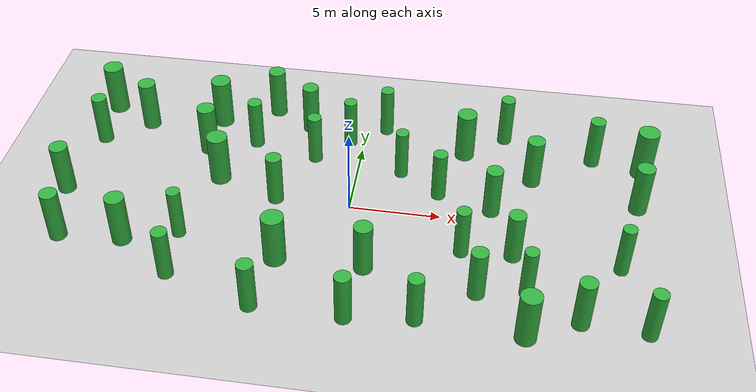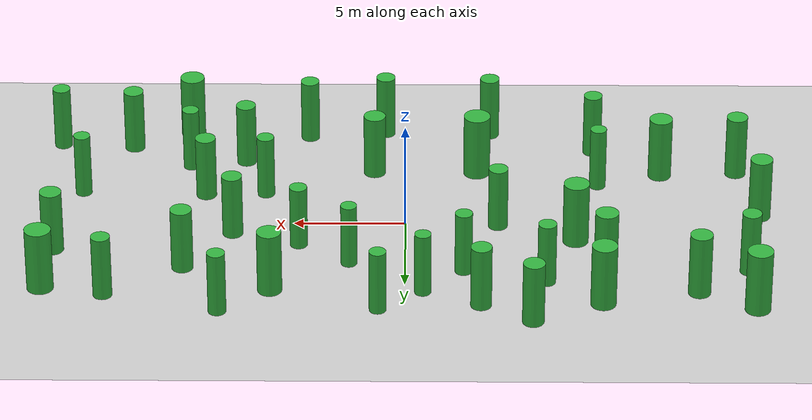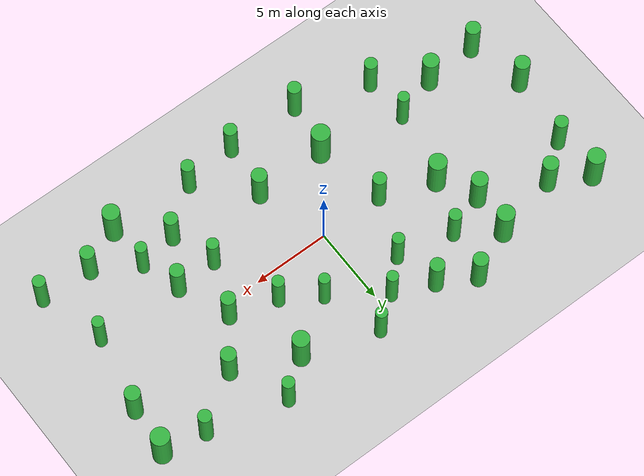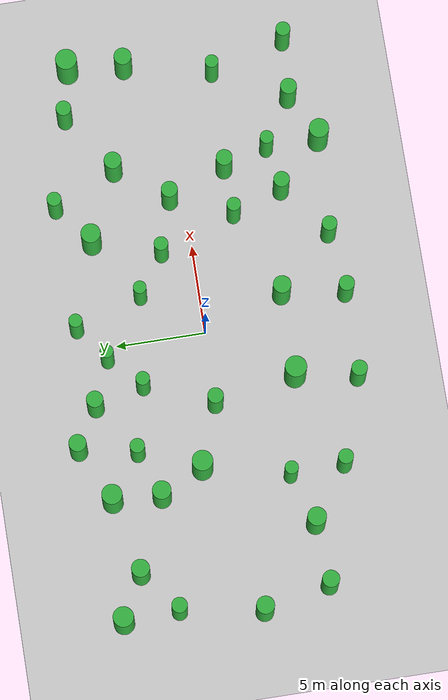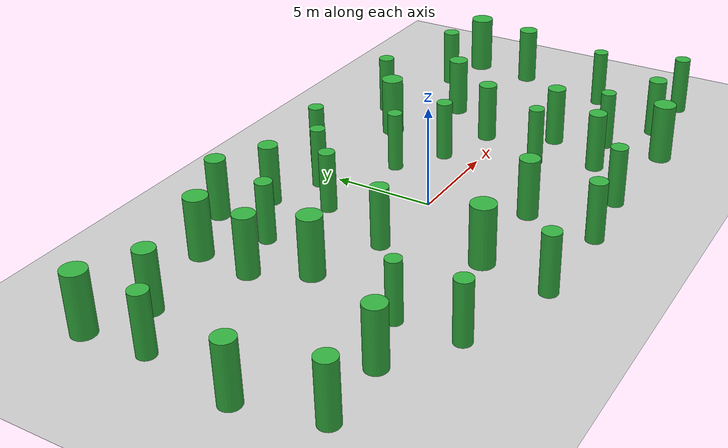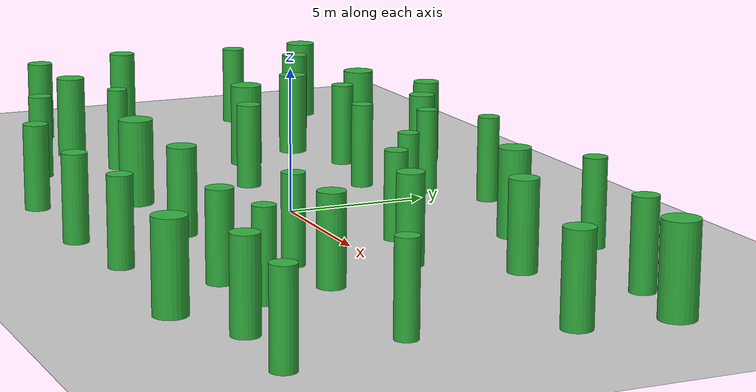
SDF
<?xml version="1.0" encoding="UTF-8"?>
<sdf version="1.9">
  <world name="uavforest">
    <physics type="ode">
      <max_step_size>0.004</max_step_size>
      <real_time_factor>1.0</real_time_factor>
      <real_time_update_rate>250</real_time_update_rate>
    </physics>
    <gravity>0 0 -9.8</gravity>
    <magnetic_field>6e-06 2.3e-05 -4.2e-05</magnetic_field>
    <atmosphere type="adiabatic"/>
    <scene>
      <grid>false</grid>
      <ambient>0.4 0.4 0.4 1</ambient>
      <background>0.7 0.7 0.7 1</background>
      <shadows>true</shadows>
    </scene>
    <model name="ground_plane">
      <static>true</static>
      <link name="link">
        <collision name="collision">
          <geometry>
            <plane>
              <normal>0 0 1</normal>
              <size>1 1</size>
            </plane>
          </geometry>
          <surface>
            <friction>
              <ode/>
            </friction>
            <bounce/>
            <contact/>
          </surface>
        </collision>
        <visual name="visual">
          <geometry>
            <plane>
              <normal>0 0 1</normal>
              <size>500 500</size>
            </plane>
          </geometry>
          <material>
            <ambient>0.8 0.8 0.8 1</ambient>
            <diffuse>0.8 0.8 0.8 1</diffuse>
            <specular>0.8 0.8 0.8 1</specular>
          </material>
        </visual>
        <pose>0 0 0 0 -0 0</pose>
        <inertial>
          <pose>0 0 0 0 -0 0</pose>
          <mass>1</mass>
          <inertia>
            <ixx>1</ixx>
            <ixy>0</ixy>
            <ixz>0</ixz>
            <iyy>1</iyy>
            <iyz>0</iyz>
            <izz>1</izz>
          </inertia>
        </inertial>
        <enable_wind>false</enable_wind>
      </link>
      <pose>0 0 0 0 -0 0</pose>
      <self_collide>false</self_collide>
    </model>
    <light name="sunUTC" type="directional">
      <pose>0 0 500 0 -0 0</pose>
      <cast_shadows>true</cast_shadows>
      <intensity>1</intensity>
      <direction>0.001 0.625 -0.78</direction>
      <diffuse>0.904 0.904 0.904 1</diffuse>
      <specular>0.271 0.271 0.271 1</specular>
      <attenuation>
        <range>2000</range>
        <linear>0</linear>
        <constant>1</constant>
        <quadratic>0</quadratic>
      </attenuation>
      <spot>
        <inner_angle>0</inner_angle>
        <outer_angle>0</outer_angle>
        <falloff>0</falloff>
      </spot>
    </light>
    <spherical_coordinates>
      <surface_model>EARTH_WGS84</surface_model>
      <world_frame_orientation>ENU</world_frame_orientation>
      <latitude_deg>47.397971057728974</latitude_deg>
      <longitude_deg> 8.546163739800146</longitude_deg>
      <elevation>0</elevation>
    </spherical_coordinates>
  <model name='tree_0'>
    <static>true</static>
    <pose>4.46165755065228 -7.599827916437329 1.5 0 0 0</pose>
    <link name='link'>
      <collision name='c'>
        <geometry><cylinder><radius>0.4187573295922798</radius><length>3</length></cylinder></geometry>
      </collision>
      <visual name='v'>
        <geometry><cylinder><radius>0.4187573295922798</radius><length>3</length></cylinder></geometry>
        <material><ambient>0.15 0.55 0.2 1</ambient><diffuse>0.2 0.7 0.25 1</diffuse></material>
      </visual>
    </link>
  </model>
<model name='tree_1'>
    <static>true</static>
    <pose>-8.857256379237672 3.7835394266241984 1.5 0 0 0</pose>
    <link name='link'>
      <collision name='c'>
        <geometry><cylinder><radius>0.5191748718557279</radius><length>3</length></cylinder></geometry>
      </collision>
      <visual name='v'>
        <geometry><cylinder><radius>0.5191748718557279</radius><length>3</length></cylinder></geometry>
        <material><ambient>0.15 0.55 0.2 1</ambient><diffuse>0.2 0.7 0.25 1</diffuse></material>
      </visual>
    </link>
  </model>
<model name='tree_2'>
    <static>true</static>
    <pose>12.549746166555053 -6.608978677929342 1.5 0 0 0</pose>
    <link name='link'>
      <collision name='c'>
        <geometry><cylinder><radius>0.4554804549213176</radius><length>3</length></cylinder></geometry>
      </collision>
      <visual name='v'>
        <geometry><cylinder><radius>0.4554804549213176</radius><length>3</length></cylinder></geometry>
        <material><ambient>0.15 0.55 0.2 1</ambient><diffuse>0.2 0.7 0.25 1</diffuse></material>
      </visual>
    </link>
  </model>
<model name='tree_3'>
    <static>true</static>
    <pose>-15.046488977981749 -4.501792403142346 1.5 0 0 0</pose>
    <link name='link'>
      <collision name='c'>
        <geometry><cylinder><radius>0.47633882202584055</radius><length>3</length></cylinder></geometry>
      </collision>
      <visual name='v'>
        <geometry><cylinder><radius>0.47633882202584055</radius><length>3</length></cylinder></geometry>
        <material><ambient>0.15 0.55 0.2 1</ambient><diffuse>0.2 0.7 0.25 1</diffuse></material>
      </visual>
    </link>
  </model>
<model name='tree_4'>
    <static>true</static>
    <pose>1.4381273793029337 -4.472950047348853 1.5 0 0 0</pose>
    <link name='link'>
      <collision name='c'>
        <geometry><cylinder><radius>0.49731642096897716</radius><length>3</length></cylinder></geometry>
      </collision>
      <visual name='v'>
        <geometry><cylinder><radius>0.49731642096897716</radius><length>3</length></cylinder></geometry>
        <material><ambient>0.15 0.55 0.2 1</ambient><diffuse>0.2 0.7 0.25 1</diffuse></material>
      </visual>
    </link>
  </model>
<model name='tree_5'>
    <static>true</static>
    <pose>9.901774613690453 -7.896019845151024 1.5 0 0 0</pose>
    <link name='link'>
      <collision name='c'>
        <geometry><cylinder><radius>0.551454812958202</radius><length>3</length></cylinder></geometry>
      </collision>
      <visual name='v'>
        <geometry><cylinder><radius>0.551454812958202</radius><length>3</length></cylinder></geometry>
        <material><ambient>0.15 0.55 0.2 1</ambient><diffuse>0.2 0.7 0.25 1</diffuse></material>
      </visual>
    </link>
  </model>
<model name='tree_6'>
    <static>true</static>
    <pose>6.3404606396232595 -2.55599173571213 1.5 0 0 0</pose>
    <link name='link'>
      <collision name='c'>
        <geometry><cylinder><radius>0.38886987495294534</radius><length>3</length></cylinder></geometry>
      </collision>
      <visual name='v'>
        <geometry><cylinder><radius>0.38886987495294534</radius><length>3</length></cylinder></geometry>
        <material><ambient>0.15 0.55 0.2 1</ambient><diffuse>0.2 0.7 0.25 1</diffuse></material>
      </visual>
    </link>
  </model>
<model name='tree_7'>
    <static>true</static>
    <pose>14.630818310616998 -2.6144872781979718 1.5 0 0 0</pose>
    <link name='link'>
      <collision name='c'>
        <geometry><cylinder><radius>0.3731864608450369</radius><length>3</length></cylinder></geometry>
      </collision>
      <visual name='v'>
        <geometry><cylinder><radius>0.3731864608450369</radius><length>3</length></cylinder></geometry>
        <material><ambient>0.15 0.55 0.2 1</ambient><diffuse>0.2 0.7 0.25 1</diffuse></material>
      </visual>
    </link>
  </model>
<model name='tree_8'>
    <static>true</static>
    <pose>-12.905075941329152 5.5599098615593565 1.5 0 0 0</pose>
    <link name='link'>
      <collision name='c'>
        <geometry><cylinder><radius>0.5009315078417227</radius><length>3</length></cylinder></geometry>
      </collision>
      <visual name='v'>
        <geometry><cylinder><radius>0.5009315078417227</radius><length>3</length></cylinder></geometry>
        <material><ambient>0.15 0.55 0.2 1</ambient><diffuse>0.2 0.7 0.25 1</diffuse></material>
      </visual>
    </link>
  </model>
<model name='tree_9'>
    <static>true</static>
    <pose>9.828104744780166 3.675708587101086 1.5 0 0 0</pose>
    <link name='link'>
      <collision name='c'>
        <geometry><cylinder><radius>0.48405702286367513</radius><length>3</length></cylinder></geometry>
      </collision>
      <visual name='v'>
        <geometry><cylinder><radius>0.48405702286367513</radius><length>3</length></cylinder></geometry>
        <material><ambient>0.15 0.55 0.2 1</ambient><diffuse>0.2 0.7 0.25 1</diffuse></material>
      </visual>
    </link>
  </model>
<model name='tree_10'>
    <static>true</static>
    <pose>2.4752686482163853 3.2731493794387756 1.5 0 0 0</pose>
    <link name='link'>
      <collision name='c'>
        <geometry><cylinder><radius>0.36145609591391553</radius><length>3</length></cylinder></geometry>
      </collision>
      <visual name='v'>
        <geometry><cylinder><radius>0.36145609591391553</radius><length>3</length></cylinder></geometry>
        <material><ambient>0.15 0.55 0.2 1</ambient><diffuse>0.2 0.7 0.25 1</diffuse></material>
      </visual>
    </link>
  </model>
<model name='tree_11'>
    <static>true</static>
    <pose>-8.7072551791505 -3.3697925823662853 1.5 0 0 0</pose>
    <link name='link'>
      <collision name='c'>
        <geometry><cylinder><radius>0.36994799423090685</radius><length>3</length></cylinder></geometry>
      </collision>
      <visual name='v'>
        <geometry><cylinder><radius>0.36994799423090685</radius><length>3</length></cylinder></geometry>
        <material><ambient>0.15 0.55 0.2 1</ambient><diffuse>0.2 0.7 0.25 1</diffuse></material>
      </visual>
    </link>
  </model>
<model name='tree_12'>
    <static>true</static>
    <pose>-8.550691636447034 -6.383977129444334 1.5 0 0 0</pose>
    <link name='link'>
      <collision name='c'>
        <geometry><cylinder><radius>0.419493400777523</radius><length>3</length></cylinder></geometry>
      </collision>
      <visual name='v'>
        <geometry><cylinder><radius>0.419493400777523</radius><length>3</length></cylinder></geometry>
        <material><ambient>0.15 0.55 0.2 1</ambient><diffuse>0.2 0.7 0.25 1</diffuse></material>
      </visual>
    </link>
  </model>
<model name='tree_13'>
    <static>true</static>
    <pose>4.737132327890993 1.746096090671811 1.5 0 0 0</pose>
    <link name='link'>
      <collision name='c'>
        <geometry><cylinder><radius>0.3927846620495242</radius><length>3</length></cylinder></geometry>
      </collision>
      <visual name='v'>
        <geometry><cylinder><radius>0.3927846620495242</radius><length>3</length></cylinder></geometry>
        <material><ambient>0.15 0.55 0.2 1</ambient><diffuse>0.2 0.7 0.25 1</diffuse></material>
      </visual>
    </link>
  </model>
<model name='tree_14'>
    <static>true</static>
    <pose>7.332057534411174 -5.385560099809146 1.5 0 0 0</pose>
    <link name='link'>
      <collision name='c'>
        <geometry><cylinder><radius>0.44486386043941195</radius><length>3</length></cylinder></geometry>
      </collision>
      <visual name='v'>
        <geometry><cylinder><radius>0.44486386043941195</radius><length>3</length></cylinder></geometry>
        <material><ambient>0.15 0.55 0.2 1</ambient><diffuse>0.2 0.7 0.25 1</diffuse></material>
      </visual>
    </link>
  </model>
<model name='tree_15'>
    <static>true</static>
    <pose>15.664747220371048 2.2399961576654857 1.5 0 0 0</pose>
    <link name='link'>
      <collision name='c'>
        <geometry><cylinder><radius>0.48923743594366154</radius><length>3</length></cylinder></geometry>
      </collision>
      <visual name='v'>
        <geometry><cylinder><radius>0.48923743594366154</radius><length>3</length></cylinder></geometry>
        <material><ambient>0.15 0.55 0.2 1</ambient><diffuse>0.2 0.7 0.25 1</diffuse></material>
      </visual>
    </link>
  </model>
<model name='tree_16'>
    <static>true</static>
    <pose>5.907656031675987 5.485630723036953 1.5 0 0 0</pose>
    <link name='link'>
      <collision name='c'>
        <geometry><cylinder><radius>0.5439999778865612</radius><length>3</length></cylinder></geometry>
      </collision>
      <visual name='v'>
        <geometry><cylinder><radius>0.5439999778865612</radius><length>3</length></cylinder></geometry>
        <material><ambient>0.15 0.55 0.2 1</ambient><diffuse>0.2 0.7 0.25 1</diffuse></material>
      </visual>
    </link>
  </model>
<model name='tree_17'>
    <static>true</static>
    <pose>-3.3397791660587437 6.632761435848696 1.5 0 0 0</pose>
    <link name='link'>
      <collision name='c'>
        <geometry><cylinder><radius>0.4647129631468497</radius><length>3</length></cylinder></geometry>
      </collision>
      <visual name='v'>
        <geometry><cylinder><radius>0.4647129631468497</radius><length>3</length></cylinder></geometry>
        <material><ambient>0.15 0.55 0.2 1</ambient><diffuse>0.2 0.7 0.25 1</diffuse></material>
      </visual>
    </link>
  </model>
<model name='tree_18'>
    <static>true</static>
    <pose>-7.5922685272660715 1.3533758435766483 1.5 0 0 0</pose>
    <link name='link'>
      <collision name='c'>
        <geometry><cylinder><radius>0.5744557209006192</radius><length>3</length></cylinder></geometry>
      </collision>
      <visual name='v'>
        <geometry><cylinder><radius>0.5744557209006192</radius><length>3</length></cylinder></geometry>
        <material><ambient>0.15 0.55 0.2 1</ambient><diffuse>0.2 0.7 0.25 1</diffuse></material>
      </visual>
    </link>
  </model>
<model name='tree_19'>
    <static>true</static>
    <pose>-3.2191838355072875 -4.490867853483467 1.5 0 0 0</pose>
    <link name='link'>
      <collision name='c'>
        <geometry><cylinder><radius>0.5993844016237775</radius><length>3</length></cylinder></geometry>
      </collision>
      <visual name='v'>
        <geometry><cylinder><radius>0.5993844016237775</radius><length>3</length></cylinder></geometry>
        <material><ambient>0.15 0.55 0.2 1</ambient><diffuse>0.2 0.7 0.25 1</diffuse></material>
      </visual>
    </link>
  </model>
<model name='tree_20'>
    <static>true</static>
    <pose>13.204090859034256 5.92829711738827 1.5 0 0 0</pose>
    <link name='link'>
      <collision name='c'>
        <geometry><cylinder><radius>0.4246111978621582</radius><length>3</length></cylinder></geometry>
      </collision>
      <visual name='v'>
        <geometry><cylinder><radius>0.4246111978621582</radius><length>3</length></cylinder></geometry>
        <material><ambient>0.15 0.55 0.2 1</ambient><diffuse>0.2 0.7 0.25 1</diffuse></material>
      </visual>
    </link>
  </model>
<model name='tree_21'>
    <static>true</static>
    <pose>0.9713175102456795 -7.990849661952904 1.5 0 0 0</pose>
    <link name='link'>
      <collision name='c'>
        <geometry><cylinder><radius>0.43103901425116825</radius><length>3</length></cylinder></geometry>
      </collision>
      <visual name='v'>
        <geometry><cylinder><radius>0.43103901425116825</radius><length>3</length></cylinder></geometry>
        <material><ambient>0.15 0.55 0.2 1</ambient><diffuse>0.2 0.7 0.25 1</diffuse></material>
      </visual>
    </link>
  </model>
<model name='tree_22'>
    <static>true</static>
    <pose>-15.376744243653366 6.8655778602338735 1.5 0 0 0</pose>
    <link name='link'>
      <collision name='c'>
        <geometry><cylinder><radius>0.569680469455796</radius><length>3</length></cylinder></geometry>
      </collision>
      <visual name='v'>
        <geometry><cylinder><radius>0.569680469455796</radius><length>3</length></cylinder></geometry>
        <material><ambient>0.15 0.55 0.2 1</ambient><diffuse>0.2 0.7 0.25 1</diffuse></material>
      </visual>
    </link>
  </model>
<model name='tree_23'>
    <static>true</static>
    <pose>-8.67386291804306 6.486720208098047 1.5 0 0 0</pose>
    <link name='link'>
      <collision name='c'>
        <geometry><cylinder><radius>0.5649088500634366</radius><length>3</length></cylinder></geometry>
      </collision>
      <visual name='v'>
        <geometry><cylinder><radius>0.5649088500634366</radius><length>3</length></cylinder></geometry>
        <material><ambient>0.15 0.55 0.2 1</ambient><diffuse>0.2 0.7 0.25 1</diffuse></material>
      </visual>
    </link>
  </model>
<model name='tree_24'>
    <static>true</static>
    <pose>9.839903928532589 -4.953441370209957 1.5 0 0 0</pose>
    <link name='link'>
      <collision name='c'>
        <geometry><cylinder><radius>0.37423270355720584</radius><length>3</length></cylinder></geometry>
      </collision>
      <visual name='v'>
        <geometry><cylinder><radius>0.37423270355720584</radius><length>3</length></cylinder></geometry>
        <material><ambient>0.15 0.55 0.2 1</ambient><diffuse>0.2 0.7 0.25 1</diffuse></material>
      </visual>
    </link>
  </model>
<model name='tree_25'>
    <static>true</static>
    <pose>15.977038989207252 5.37644136127923 1.5 0 0 0</pose>
    <link name='link'>
      <collision name='c'>
        <geometry><cylinder><radius>0.5922490643211877</radius><length>3</length></cylinder></geometry>
      </collision>
      <visual name='v'>
        <geometry><cylinder><radius>0.5922490643211877</radius><length>3</length></cylinder></geometry>
        <material><ambient>0.15 0.55 0.2 1</ambient><diffuse>0.2 0.7 0.25 1</diffuse></material>
      </visual>
    </link>
  </model>
<model name='tree_26'>
    <static>true</static>
    <pose>15.875086331363022 -6.827828462405872 1.5 0 0 0</pose>
    <link name='link'>
      <collision name='c'>
        <geometry><cylinder><radius>0.4032885780667601</radius><length>3</length></cylinder></geometry>
      </collision>
      <visual name='v'>
        <geometry><cylinder><radius>0.4032885780667601</radius><length>3</length></cylinder></geometry>
        <material><ambient>0.15 0.55 0.2 1</ambient><diffuse>0.2 0.7 0.25 1</diffuse></material>
      </visual>
    </link>
  </model>
<model name='tree_27'>
    <static>true</static>
    <pose>7.719389067133786 0.8268867380222602 1.5 0 0 0</pose>
    <link name='link'>
      <collision name='c'>
        <geometry><cylinder><radius>0.4569217297451698</radius><length>3</length></cylinder></geometry>
      </collision>
      <visual name='v'>
        <geometry><cylinder><radius>0.4569217297451698</radius><length>3</length></cylinder></geometry>
        <material><ambient>0.15 0.55 0.2 1</ambient><diffuse>0.2 0.7 0.25 1</diffuse></material>
      </visual>
    </link>
  </model>
<model name='tree_28'>
    <static>true</static>
    <pose>-15.20683641925796 3.7850315480813137 1.5 0 0 0</pose>
    <link name='link'>
      <collision name='c'>
        <geometry><cylinder><radius>0.43304636698660715</radius><length>3</length></cylinder></geometry>
      </collision>
      <visual name='v'>
        <geometry><cylinder><radius>0.43304636698660715</radius><length>3</length></cylinder></geometry>
        <material><ambient>0.15 0.55 0.2 1</ambient><diffuse>0.2 0.7 0.25 1</diffuse></material>
      </visual>
    </link>
  </model>
<model name='tree_29'>
    <static>true</static>
    <pose>-6.233892245164782 4.725527986445789 1.5 0 0 0</pose>
    <link name='link'>
      <collision name='c'>
        <geometry><cylinder><radius>0.40689887185194257</radius><length>3</length></cylinder></geometry>
      </collision>
      <visual name='v'>
        <geometry><cylinder><radius>0.40689887185194257</radius><length>3</length></cylinder></geometry>
        <material><ambient>0.15 0.55 0.2 1</ambient><diffuse>0.2 0.7 0.25 1</diffuse></material>
      </visual>
    </link>
  </model>
<model name='tree_30'>
    <static>true</static>
    <pose>1.1589034393191007 7.027794245195452 1.5 0 0 0</pose>
    <link name='link'>
      <collision name='c'>
        <geometry><cylinder><radius>0.3788354379628569</radius><length>3</length></cylinder></geometry>
      </collision>
      <visual name='v'>
        <geometry><cylinder><radius>0.3788354379628569</radius><length>3</length></cylinder></geometry>
        <material><ambient>0.15 0.55 0.2 1</ambient><diffuse>0.2 0.7 0.25 1</diffuse></material>
      </visual>
    </link>
  </model>
<model name='tree_31'>
    <static>true</static>
    <pose>-0.7956369849982359 5.595803113995711 1.5 0 0 0</pose>
    <link name='link'>
      <collision name='c'>
        <geometry><cylinder><radius>0.3682070572961422</radius><length>3</length></cylinder></geometry>
      </collision>
      <visual name='v'>
        <geometry><cylinder><radius>0.3682070572961422</radius><length>3</length></cylinder></geometry>
        <material><ambient>0.15 0.55 0.2 1</ambient><diffuse>0.2 0.7 0.25 1</diffuse></material>
      </visual>
    </link>
  </model>
<model name='tree_32'>
    <static>true</static>
    <pose>-11.572030031483017 -4.2998163243490115 1.5 0 0 0</pose>
    <link name='link'>
      <collision name='c'>
        <geometry><cylinder><radius>0.5234874530747631</radius><length>3</length></cylinder></geometry>
      </collision>
      <visual name='v'>
        <geometry><cylinder><radius>0.5234874530747631</radius><length>3</length></cylinder></geometry>
        <material><ambient>0.15 0.55 0.2 1</ambient><diffuse>0.2 0.7 0.25 1</diffuse></material>
      </visual>
    </link>
  </model>
<model name='tree_33'>
    <static>true</static>
    <pose>-3.8278070743132275 -7.905662662656111 1.5 0 0 0</pose>
    <link name='link'>
      <collision name='c'>
        <geometry><cylinder><radius>0.4379397006679562</radius><length>3</length></cylinder></geometry>
      </collision>
      <visual name='v'>
        <geometry><cylinder><radius>0.4379397006679562</radius><length>3</length></cylinder></geometry>
        <material><ambient>0.15 0.55 0.2 1</ambient><diffuse>0.2 0.7 0.25 1</diffuse></material>
      </visual>
    </link>
  </model>
<model name='tree_34'>
    <static>true</static>
    <pose>8.135462529904839 7.193787723455822 1.5 0 0 0</pose>
    <link name='link'>
      <collision name='c'>
        <geometry><cylinder><radius>0.3998401705906332</radius><length>3</length></cylinder></geometry>
      </collision>
      <visual name='v'>
        <geometry><cylinder><radius>0.3998401705906332</radius><length>3</length></cylinder></geometry>
        <material><ambient>0.15 0.55 0.2 1</ambient><diffuse>0.2 0.7 0.25 1</diffuse></material>
      </visual>
    </link>
  </model>
<model name='tree_35'>
    <static>true</static>
    <pose>9.044331083552628 -2.4447397550648162 1.5 0 0 0</pose>
    <link name='link'>
      <collision name='c'>
        <geometry><cylinder><radius>0.45709450330868606</radius><length>3</length></cylinder></geometry>
      </collision>
      <visual name='v'>
        <geometry><cylinder><radius>0.45709450330868606</radius><length>3</length></cylinder></geometry>
        <material><ambient>0.15 0.55 0.2 1</ambient><diffuse>0.2 0.7 0.25 1</diffuse></material>
      </visual>
    </link>
  </model>
<model name='tree_36'>
    <static>true</static>
    <pose>-4.141731961022202 0.09537263483324665 1.5 0 0 0</pose>
    <link name='link'>
      <collision name='c'>
        <geometry><cylinder><radius>0.4353077937153208</radius><length>3</length></cylinder></geometry>
      </collision>
      <visual name='v'>
        <geometry><cylinder><radius>0.4353077937153208</radius><length>3</length></cylinder></geometry>
        <material><ambient>0.15 0.55 0.2 1</ambient><diffuse>0.2 0.7 0.25 1</diffuse></material>
      </visual>
    </link>
  </model>
<model name='tree_37'>
    <static>true</static>
    <pose>-15.914376876707657 -0.7919407261167617 1.5 0 0 0</pose>
    <link name='link'>
      <collision name='c'>
        <geometry><cylinder><radius>0.4984527987798908</radius><length>3</length></cylinder></geometry>
      </collision>
      <visual name='v'>
        <geometry><cylinder><radius>0.4984527987798908</radius><length>3</length></cylinder></geometry>
        <material><ambient>0.15 0.55 0.2 1</ambient><diffuse>0.2 0.7 0.25 1</diffuse></material>
      </visual>
    </link>
  </model>
<model name='tree_38'>
    <static>true</static>
    <pose>-2.5879438907288694 3.876304236245053 1.5 0 0 0</pose>
    <link name='link'>
      <collision name='c'>
        <geometry><cylinder><radius>0.3886307256024587</radius><length>3</length></cylinder></geometry>
      </collision>
      <visual name='v'>
        <geometry><cylinder><radius>0.3886307256024587</radius><length>3</length></cylinder></geometry>
        <material><ambient>0.15 0.55 0.2 1</ambient><diffuse>0.2 0.7 0.25 1</diffuse></material>
      </visual>
    </link>
  </model>
<model name='tree_39'>
    <static>true</static>
    <pose>-5.594065813802626 7.914044093774777 1.5 0 0 0</pose>
    <link name='link'>
      <collision name='c'>
        <geometry><cylinder><radius>0.4826392093578311</radius><length>3</length></cylinder></geometry>
      </collision>
      <visual name='v'>
        <geometry><cylinder><radius>0.4826392093578311</radius><length>3</length></cylinder></geometry>
        <material><ambient>0.15 0.55 0.2 1</ambient><diffuse>0.2 0.7 0.25 1</diffuse></material>
      </visual>
    </link>
  </model>
  </world>
</sdf>
